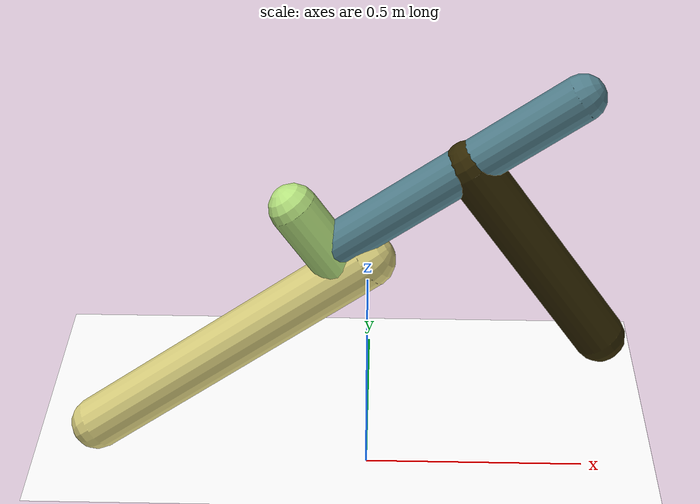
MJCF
<mujoco model="morphology">
  <option timestep="0.01"/>
  <default>
    <default class="/"/>
  </default>
  <asset>
    <texture name="texplane" type="2d" builtin="checker" rgb1="0.1 0.2 0.3" rgb2="0.2 0.3 0.4" width="300" height="300"/>
    <material name="MatPlane" class="/" texture="texplane" texrepeat="20 20" specular="1" shininess="1" reflectance="0.5"/>
  </asset>
  <worldbody>
    <light name="//unnamed_light_0" class="/" directional="true" pos="0 0 1.5" dir="0 0 -1.3" cutoff="1e+02" exponent="1" diffuse="1 1 1" specular="0.1 0.1 0.1"/>
    <geom name="ground" class="/" type="plane" size="15 15 0.5" material="MatPlane" rgba="1 1 1 1"/>
    <body name="body" pos="0 0 0.55">
      <geom name="geom0" class="/" type="capsule" contype="1" conaffinity="1" condim="3" size="0.061" rgba="0.85 0.81 0.49 1" friction="0.4 0.1 0.1" fromto="0 0 0 -0.62 0 -0.45"/>
      <body name="body1" pos="-0.048 0 -0.034">
        <geom name="geom1" class="/" type="capsule" contype="1" conaffinity="1" condim="3" size="0.054" rgba="0.72 0.9 0.5 1" friction="0.4 0.1 0.1" fromto="0 0 0 -0.11 0 0.16"/>
        <body name="body2" pos="-0.04 0 0.055">
          <geom name="geom2" class="/" type="capsule" contype="1" conaffinity="1" condim="3" size="0.05" rgba="0.32 0.5 0.55 1" friction="0.4 0.1 0.1" fromto="0 0 0 0.52 0 0.37"/>
          <body name="body3" pos="0.3 0 0.21">
            <geom name="geom3" class="/" type="capsule" contype="1" conaffinity="1" condim="3" size="0.057" rgba="0.2 0.16 0.013 1" friction="0.4 0.1 0.1" fromto="0 0 0 0.3 0 -0.42"/>
            <joint name="joint3" class="/" type="hinge" axis="0 1 0" limited="true" stiffness="20" range="-33 33" armature="0.1" damping="2"/>
          </body>
          <joint name="joint2" class="/" type="hinge" axis="0 1 0" limited="true" stiffness="20" range="-31 31" armature="0.1" damping="2"/>
        </body>
        <joint name="joint1" class="/" type="hinge" axis="0 1 0" limited="true" stiffness="20" range="-33 33" armature="0.1" damping="2"/>
      </body>
      <joint name="rootx" class="/" type="slide" axis="1 0 0" limited="false" stiffness="0" armature="0" damping="0"/>
      <joint name="rootz" class="/" type="slide" axis="0 0 1" limited="false" stiffness="0" armature="0" damping="0"/>
      <joint name="rooty" class="/" type="hinge" axis="0 1 0" limited="false" stiffness="0" armature="0" damping="0"/>
    </body>
  </worldbody>
  <actuator>
    <motor name="motor3" class="/" ctrllimited="true" ctrlrange="-1 1" gear="1e+02" joint="joint3"/>
    <motor name="motor2" class="/" ctrllimited="true" ctrlrange="-1 1" gear="1.6e+02" joint="joint2"/>
    <motor name="motor1" class="/" ctrllimited="true" ctrlrange="-1 1" gear="1.4e+02" joint="joint1"/>
  </actuator>
  <sensor>
    <subtreelinvel name="velocity" body="body"/>
  </sensor>
</mujoco>
